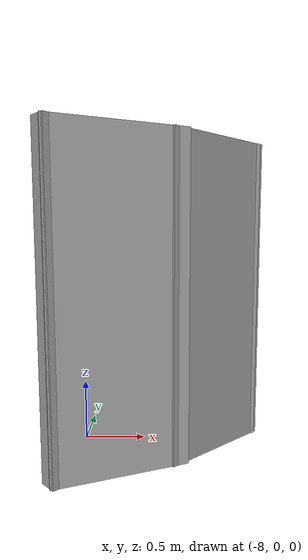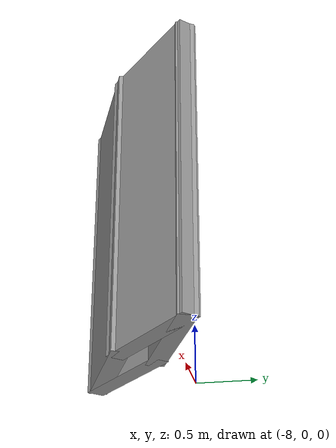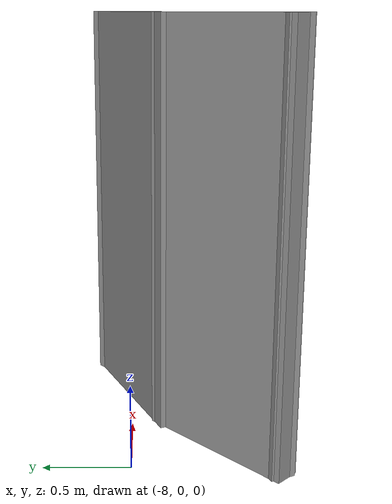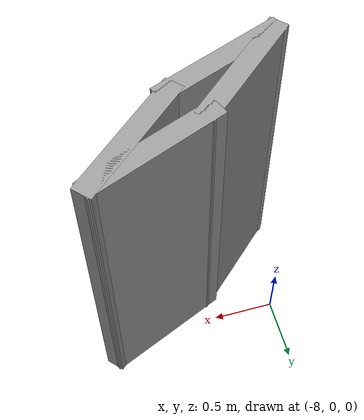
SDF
<?xml version='1.0'?>
<sdf version='1.7'>
  <model name='honours_project_world'>
    <pose>-4.09152 -0.335024 0 0 -0 0</pose>
    <link name='Wall_1'>
      <collision name='Wall_1_Collision'>
        <geometry>
          <box>
            <size>1.02261 0.15 2.5</size>
          </box>
        </geometry>
        <pose>0 0 1.25 0 -0 0</pose>
      </collision>
      <visual name='Wall_1_Visual'>
        <pose>0 0 1.25 0 -0 0</pose>
        <geometry>
          <box>
            <size>1.02261 0.15 2.5</size>
          </box>
        </geometry>
        <material>
          <script>
            <uri>file://media/materials/scripts/gazebo.material</uri>
            <name>Gazebo/Grey</name>
          </script>
          <ambient>1 1 1 1</ambient>
        </material>
        <meta>
          <layer>0</layer>
        </meta>
      </visual>
      <pose>-2.83853 0.178537 0 0 -0 0.756161</pose>
    </link>
    <link name='Wall_2'>
      <collision name='Wall_2_Collision'>
        <geometry>
          <box>
            <size>1.05316 0.15 2.5</size>
          </box>
        </geometry>
        <pose>0 0 1.25 0 -0 0</pose>
      </collision>
      <visual name='Wall_2_Visual'>
        <pose>0 0 1.25 0 -0 0</pose>
        <geometry>
          <box>
            <size>1.05316 0.15 2.5</size>
          </box>
        </geometry>
        <material>
          <script>
            <uri>file://media/materials/scripts/gazebo.material</uri>
            <name>Gazebo/Grey</name>
          </script>
          <ambient>1 1 1 1</ambient>
        </material>
        <meta>
          <layer>0</layer>
        </meta>
      </visual>
      <pose>-2.94914 0.299362 0 0 -0 -2.73513</pose>
    </link>
    <link name='Wall_3'>
      <collision name='Wall_3_Collision'>
        <geometry>
          <box>
            <size>1.00391 0.15 2.5</size>
          </box>
        </geometry>
        <pose>0 0 1.25 0 -0 0</pose>
      </collision>
      <visual name='Wall_3_Visual'>
        <pose>0 0 1.25 0 -0 0</pose>
        <geometry>
          <box>
            <size>1.00391 0.15 2.5</size>
          </box>
        </geometry>
        <material>
          <script>
            <uri>file://media/materials/scripts/gazebo.material</uri>
            <name>Gazebo/Grey</name>
          </script>
          <ambient>1 1 1 1</ambient>
        </material>
        <meta>
          <layer>0</layer>
        </meta>
      </visual>
      <pose>-3.67472 -0.185151 0 0 -0 -2.38607</pose>
    </link>
    <link name='Wall_4'>
      <collision name='Wall_4_Collision'>
        <geometry>
          <box>
            <size>1.05316 0.15 2.5</size>
          </box>
        </geometry>
        <pose>0 0 1.25 0 -0 0</pose>
      </collision>
      <visual name='Wall_4_Visual'>
        <pose>0 0 1.25 0 -0 0</pose>
        <geometry>
          <box>
            <size>1.05316 0.15 2.5</size>
          </box>
        </geometry>
        <material>
          <script>
            <uri>file://media/materials/scripts/gazebo.material</uri>
            <name>Gazebo/Grey</name>
          </script>
          <ambient>1 1 1 1</ambient>
        </material>
        <meta>
          <layer>0</layer>
        </meta>
      </visual>
      <pose>-3.55749 -0.299363 0 0 -0 0.406462</pose>
    </link>
    <static>1</static>
  </model>
</sdf>
